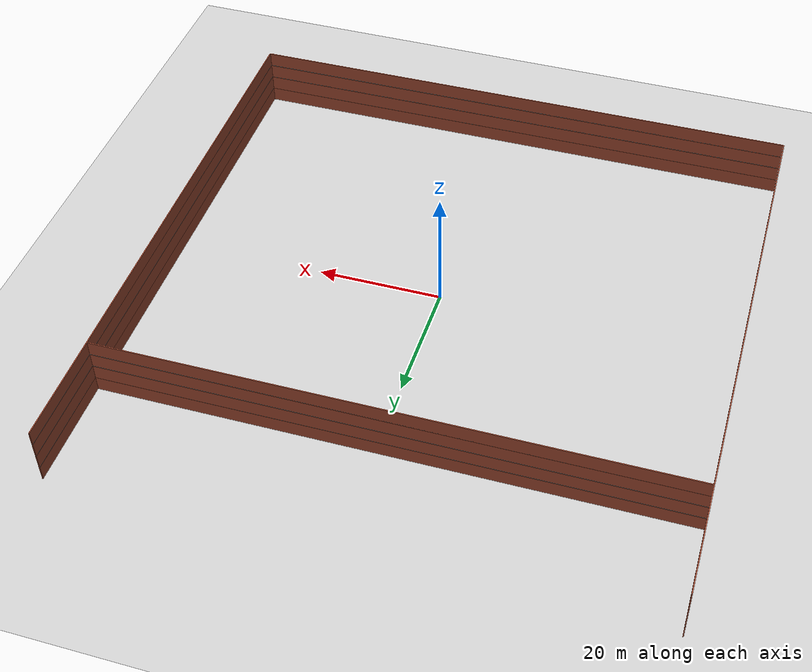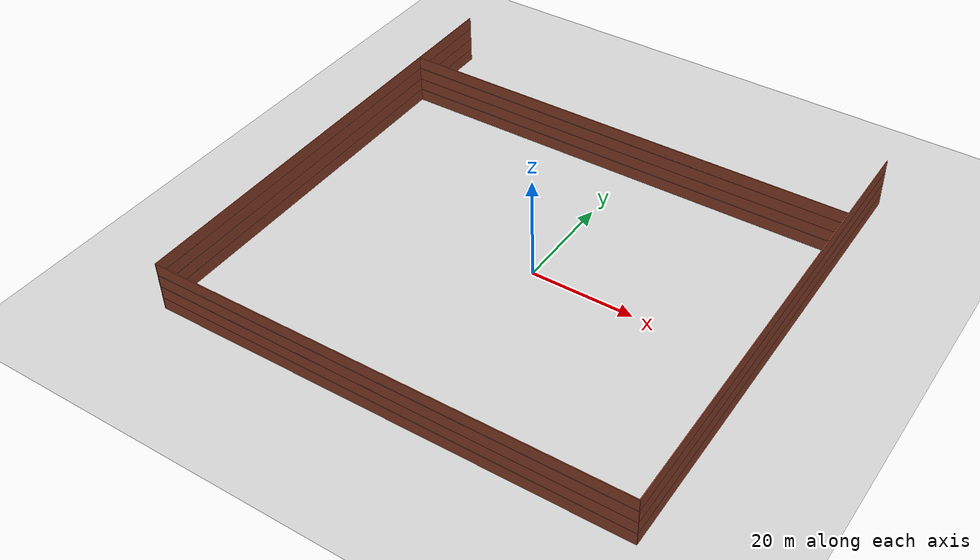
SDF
<sdf version="1.6">
 <world name="default">
  <light name="sun" type="directional">
   <pose>0 0 10 0 -0 0</pose>
   <diffuse>0.8 0.8 0.8 1</diffuse>
   <specular>0.1 0.1 0.1 1</specular>
   <attenuation>
    <range>1000</range>
    <constant>0.9</constant>
    <linear>0.01</linear>
    <quadratic>0.001</quadratic>
   </attenuation>
   <direction>-0.5 0.5 -1</direction>
  </light>
  <model name="ground_plane">
   <static>1</static>
   <link name="link">
    <collision name="collision">
     <geometry><plane><normal>0 0 1</normal><size>100 100</size></plane></geometry>
     <surface><friction><ode><mu>100</mu><mu2>50</mu2></ode></friction></surface>
    </collision>
    <visual name="visual">
     <cast_shadows>0</cast_shadows>
     <geometry><plane><normal>0 0 1</normal><size>100 100</size></plane></geometry>
     <material>
      <script><uri>file://media/materials/scripts/gazebo.material</uri><name>Gazebo/Grey</name></script>
     </material>
    </visual>
   </link>
  </model>
  <gravity>0 0 -9.8</gravity>
  <magnetic_field>6e-06 2.3e-05 -4.2e-05</magnetic_field>
  <atmosphere type="adiabatic"/>
  <physics name="default_physics" default="0" type="ode">
   <max_step_size>0.001</max_step_size>
   <real_time_factor>1</real_time_factor>
   <real_time_update_rate>1000</real_time_update_rate>
  </physics>
  <scene><ambient>0.4 0.4 0.4 1</ambient><background>0.7 0.7 0.7 1</background><shadows>1</shadows></scene>
  <spherical_coordinates>
   <surface_model>EARTH_WGS84</surface_model>
   <latitude_deg>0</latitude_deg>
   <longitude_deg>0</longitude_deg>
   <elevation>0</elevation>
   <heading_deg>0</heading_deg>
  </spherical_coordinates>
  <plugin name="ros_interface_plugin" filename="librotors_gazebo_ros_interface_plugin.so"/>
  <model name="longwall">
   <pose>-47.5422 4.38229 0 0 -0 1.57891</pose>
   <link name="Floor_0">
    <collision name="Floor_0_Collision">
     <geometry><box><size>91 0.15 0.1</size></box></geometry>
     <pose>0 0 0.05 0 -0 0</pose>
    </collision>
    <visual name="Floor_0_Visual">
     <pose>0 0 0.05 0 -0 0</pose>
     <geometry><box><size>91 0.15 0.1</size></box></geometry>
     <material>
      <script><uri>file://media/materials/scripts/gazebo.material</uri><name>Gazebo/Grey</name></script>
      <ambient>1 1 1 1</ambient>
     </material>
    </visual>
    <pose>2e-06 0 2.5 0 -0 0</pose>
   </link>
   <link name="Floor_1">
    <collision name="Floor_1_Collision">
     <geometry><box><size>91 0.15 0.1</size></box></geometry>
     <pose>0 0 0.05 0 -0 0</pose>
    </collision>
    <visual name="Floor_1_Visual">
     <pose>0 0 0.05 0 -0 0</pose>
     <geometry><box><size>91 0.15 0.1</size></box></geometry>
     <material>
      <script><uri>file://media/materials/scripts/gazebo.material</uri><name>Gazebo/Grey</name></script>
      <ambient>1 1 1 1</ambient>
     </material>
    </visual>
    <pose>2e-06 0 5 0 -0 0</pose>
   </link>
   <link name="Floor_2">
    <collision name="Floor_2_Collision">
     <geometry><box><size>91 0.15 0.1</size></box></geometry>
     <pose>0 0 0.05 0 -0 0</pose>
    </collision>
    <visual name="Floor_2_Visual">
     <pose>0 0 0.05 0 -0 0</pose>
     <geometry><box><size>91 0.15 0.1</size></box></geometry>
     <material>
      <script><uri>file://media/materials/scripts/gazebo.material</uri><name>Gazebo/Grey</name></script>
      <ambient>1 1 1 1</ambient>
     </material>
    </visual>
    <pose>2e-06 0 7.5 0 -0 0</pose>
   </link>
   <link name="Wall_4">
    <collision name="Wall_4_Collision">
     <geometry><box><size>91 0.15 2.5</size></box></geometry>
     <pose>0 0 1.25 0 -0 0</pose>
    </collision>
    <visual name="Wall_4_Visual">
     <pose>0 0 1.25 0 -0 0</pose>
     <geometry><box><size>91 0.15 2.5</size></box></geometry>
     <material>
      <script><uri>file://media/materials/scripts/gazebo.material</uri><name>Gazebo/Bricks</name></script>
      <ambient>1 1 1 1</ambient>
     </material>
    </visual>
    <pose>2e-06 0 0 0 -0 0</pose>
   </link>
   <link name="Wall_6">
    <collision name="Wall_6_Collision">
     <geometry><box><size>91 0.15 2.5</size></box></geometry>
     <pose>0 0 1.25 0 -0 0</pose>
    </collision>
    <visual name="Wall_6_Visual">
     <pose>0 0 1.25 0 -0 0</pose>
     <geometry><box><size>91 0.15 2.5</size></box></geometry>
     <material>
      <script><uri>file://media/materials/scripts/gazebo.material</uri><name>Gazebo/Bricks</name></script>
      <ambient>1 1 1 1</ambient>
     </material>
    </visual>
    <pose>2e-06 0 2.5 0 -0 0</pose>
   </link>
   <link name="Wall_7">
    <collision name="Wall_7_Collision">
     <geometry><box><size>91 0.15 2.5</size></box></geometry>
     <pose>0 0 1.25 0 -0 0</pose>
    </collision>
    <visual name="Wall_7_Visual">
     <pose>0 0 1.25 0 -0 0</pose>
     <geometry><box><size>91 0.15 2.5</size></box></geometry>
     <material>
      <script><uri>file://media/materials/scripts/gazebo.material</uri><name>Gazebo/Bricks</name></script>
      <ambient>1 1 1 1</ambient>
     </material>
    </visual>
    <pose>2e-06 0 5 0 -0 0</pose>
   </link>
   <link name="Wall_8">
    <collision name="Wall_8_Collision">
     <geometry><box><size>91 0.15 2.5</size></box></geometry>
     <pose>0 0 1.25 0 -0 0</pose>
    </collision>
    <visual name="Wall_8_Visual">
     <pose>0 0 1.25 0 -0 0</pose>
     <geometry><box><size>91 0.15 2.5</size></box></geometry>
     <material>
      <script><uri>file://media/materials/scripts/gazebo.material</uri><name>Gazebo/Bricks</name></script>
      <ambient>1 1 1 1</ambient>
     </material>
    </visual>
    <pose>2e-06 0 7.5 0 -0 0</pose>
   </link>
   <static>1</static>
  </model>
  <model name="longwall_clone">
   <pose>43.5098 5.19994 0 0 -0 1.57891</pose>
   <link name="Floor_0">
    <collision name="Floor_0_Collision">
     <geometry><box><size>91 0.15 0.1</size></box></geometry>
     <pose>0 0 0.05 0 -0 0</pose>
    </collision>
    <visual name="Floor_0_Visual">
     <pose>0 0 0.05 0 -0 0</pose>
     <geometry><box><size>91 0.15 0.1</size></box></geometry>
     <material>
      <script><uri>file://media/materials/scripts/gazebo.material</uri><name>Gazebo/Grey</name></script>
      <ambient>1 1 1 1</ambient>
     </material>
    </visual>
    <pose>2e-06 0 2.5 0 -0 0</pose>
   </link>
   <link name="Floor_1">
    <collision name="Floor_1_Collision">
     <geometry><box><size>91 0.15 0.1</size></box></geometry>
     <pose>0 0 0.05 0 -0 0</pose>
    </collision>
    <visual name="Floor_1_Visual">
     <pose>0 0 0.05 0 -0 0</pose>
     <geometry><box><size>91 0.15 0.1</size></box></geometry>
     <material>
      <script><uri>file://media/materials/scripts/gazebo.material</uri><name>Gazebo/Grey</name></script>
      <ambient>1 1 1 1</ambient>
     </material>
    </visual>
    <pose>2e-06 0 5 0 -0 0</pose>
   </link>
   <link name="Floor_2">
    <collision name="Floor_2_Collision">
     <geometry><box><size>91 0.15 0.1</size></box></geometry>
     <pose>0 0 0.05 0 -0 0</pose>
    </collision>
    <visual name="Floor_2_Visual">
     <pose>0 0 0.05 0 -0 0</pose>
     <geometry><box><size>91 0.15 0.1</size></box></geometry>
     <material>
      <script><uri>file://media/materials/scripts/gazebo.material</uri><name>Gazebo/Grey</name></script>
      <ambient>1 1 1 1</ambient>
     </material>
    </visual>
    <pose>2e-06 0 7.5 0 -0 0</pose>
   </link>
   <link name="Wall_4">
    <collision name="Wall_4_Collision">
     <geometry><box><size>91 0.15 2.5</size></box></geometry>
     <pose>0 0 1.25 0 -0 0</pose>
    </collision>
    <visual name="Wall_4_Visual">
     <pose>0 0 1.25 0 -0 0</pose>
     <geometry><box><size>91 0.15 2.5</size></box></geometry>
     <material>
      <script><uri>file://media/materials/scripts/gazebo.material</uri><name>Gazebo/Bricks</name></script>
      <ambient>1 1 1 1</ambient>
     </material>
    </visual>
    <pose>2e-06 0 0 0 -0 0</pose>
   </link>
   <link name="Wall_6">
    <collision name="Wall_6_Collision">
     <geometry><box><size>91 0.15 2.5</size></box></geometry>
     <pose>0 0 1.25 0 -0 0</pose>
    </collision>
    <visual name="Wall_6_Visual">
     <pose>0 0 1.25 0 -0 0</pose>
     <geometry><box><size>91 0.15 2.5</size></box></geometry>
     <material>
      <script><uri>file://media/materials/scripts/gazebo.material</uri><name>Gazebo/Bricks</name></script>
      <ambient>1 1 1 1</ambient>
     </material>
    </visual>
    <pose>2e-06 0 2.5 0 -0 0</pose>
   </link>
   <link name="Wall_7">
    <collision name="Wall_7_Collision">
     <geometry><box><size>91 0.15 2.5</size></box></geometry>
     <pose>0 0 1.25 0 -0 0</pose>
    </collision>
    <visual name="Wall_7_Visual">
     <pose>0 0 1.25 0 -0 0</pose>
     <geometry><box><size>91 0.15 2.5</size></box></geometry>
     <material>
      <script><uri>file://media/materials/scripts/gazebo.material</uri><name>Gazebo/Bricks</name></script>
      <ambient>1 1 1 1</ambient>
     </material>
    </visual>
    <pose>2e-06 0 5 0 -0 0</pose>
   </link>
   <link name="Wall_8">
    <collision name="Wall_8_Collision">
     <geometry><box><size>91 0.15 2.5</size></box></geometry>
     <pose>0 0 1.25 0 -0 0</pose>
    </collision>
    <visual name="Wall_8_Visual">
     <pose>0 0 1.25 0 -0 0</pose>
     <geometry><box><size>91 0.15 2.5</size></box></geometry>
     <material>
      <script><uri>file://media/materials/scripts/gazebo.material</uri><name>Gazebo/Bricks</name></script>
      <ambient>1 1 1 1</ambient>
     </material>
    </visual>
    <pose>2e-06 0 7.5 0 -0 0</pose>
   </link>
   <static>1</static>
  </model>
  <model name="longwall_clone_clone">
   <pose>-1.57833 -40.6937 0 0 -0 0.007705</pose>
   <link name="Floor_0">
    <collision name="Floor_0_Collision">
     <geometry><box><size>91 0.15 0.1</size></box></geometry>
     <pose>0 0 0.05 0 -0 0</pose>
    </collision>
    <visual name="Floor_0_Visual">
     <pose>0 0 0.05 0 -0 0</pose>
     <geometry><box><size>91 0.15 0.1</size></box></geometry>
     <material>
      <script><uri>file://media/materials/scripts/gazebo.material</uri><name>Gazebo/Grey</name></script>
      <ambient>1 1 1 1</ambient>
     </material>
    </visual>
    <pose>2e-06 0 2.5 0 -0 0</pose>
   </link>
   <link name="Floor_1">
    <collision name="Floor_1_Collision">
     <geometry><box><size>91 0.15 0.1</size></box></geometry>
     <pose>0 0 0.05 0 -0 0</pose>
    </collision>
    <visual name="Floor_1_Visual">
     <pose>0 0 0.05 0 -0 0</pose>
     <geometry><box><size>91 0.15 0.1</size></box></geometry>
     <material>
      <script><uri>file://media/materials/scripts/gazebo.material</uri><name>Gazebo/Grey</name></script>
      <ambient>1 1 1 1</ambient>
     </material>
    </visual>
    <pose>2e-06 0 5 0 -0 0</pose>
   </link>
   <link name="Floor_2">
    <collision name="Floor_2_Collision">
     <geometry><box><size>91 0.15 0.1</size></box></geometry>
     <pose>0 0 0.05 0 -0 0</pose>
    </collision>
    <visual name="Floor_2_Visual">
     <pose>0 0 0.05 0 -0 0</pose>
     <geometry><box><size>91 0.15 0.1</size></box></geometry>
     <material>
      <script><uri>file://media/materials/scripts/gazebo.material</uri><name>Gazebo/Grey</name></script>
      <ambient>1 1 1 1</ambient>
     </material>
    </visual>
    <pose>2e-06 0 7.5 0 -0 0</pose>
   </link>
   <link name="Wall_4">
    <collision name="Wall_4_Collision">
     <geometry><box><size>91 0.15 2.5</size></box></geometry>
     <pose>0 0 1.25 0 -0 0</pose>
    </collision>
    <visual name="Wall_4_Visual">
     <pose>0 0 1.25 0 -0 0</pose>
     <geometry><box><size>91 0.15 2.5</size></box></geometry>
     <material>
      <script><uri>file://media/materials/scripts/gazebo.material</uri><name>Gazebo/Bricks</name></script>
      <ambient>1 1 1 1</ambient>
     </material>
    </visual>
    <pose>2e-06 0 0 0 -0 0</pose>
   </link>
   <link name="Wall_6">
    <collision name="Wall_6_Collision">
     <geometry><box><size>91 0.15 2.5</size></box></geometry>
     <pose>0 0 1.25 0 -0 0</pose>
    </collision>
    <visual name="Wall_6_Visual">
     <pose>0 0 1.25 0 -0 0</pose>
     <geometry><box><size>91 0.15 2.5</size></box></geometry>
     <material>
      <script><uri>file://media/materials/scripts/gazebo.material</uri><name>Gazebo/Bricks</name></script>
      <ambient>1 1 1 1</ambient>
     </material>
    </visual>
    <pose>2e-06 0 2.5 0 -0 0</pose>
   </link>
   <link name="Wall_7">
    <collision name="Wall_7_Collision">
     <geometry><box><size>91 0.15 2.5</size></box></geometry>
     <pose>0 0 1.25 0 -0 0</pose>
    </collision>
    <visual name="Wall_7_Visual">
     <pose>0 0 1.25 0 -0 0</pose>
     <geometry><box><size>91 0.15 2.5</size></box></geometry>
     <material>
      <script><uri>file://media/materials/scripts/gazebo.material</uri><name>Gazebo/Bricks</name></script>
      <ambient>1 1 1 1</ambient>
     </material>
    </visual>
    <pose>2e-06 0 5 0 -0 0</pose>
   </link>
   <link name="Wall_8">
    <collision name="Wall_8_Collision">
     <geometry><box><size>91 0.15 2.5</size></box></geometry>
     <pose>0 0 1.25 0 -0 0</pose>
    </collision>
    <visual name="Wall_8_Visual">
     <pose>0 0 1.25 0 -0 0</pose>
     <geometry><box><size>91 0.15 2.5</size></box></geometry>
     <material>
      <script><uri>file://media/materials/scripts/gazebo.material</uri><name>Gazebo/Bricks</name></script>
      <ambient>1 1 1 1</ambient>
     </material>
    </visual>
    <pose>2e-06 0 7.5 0 -0 0</pose>
   </link>
   <static>1</static>
  </model>
  <model name="longwall_clone_clone_clone">
   <pose>-2.28432 32.6514 0 0 -0 0.007705</pose>
   <link name="Floor_0">
    <collision name="Floor_0_Collision">
     <geometry><box><size>91 0.15 0.1</size></box></geometry>
     <pose>0 0 0.05 0 -0 0</pose>
    </collision>
    <visual name="Floor_0_Visual">
     <pose>0 0 0.05 0 -0 0</pose>
     <geometry><box><size>91 0.15 0.1</size></box></geometry>
     <material>
      <script><uri>file://media/materials/scripts/gazebo.material</uri><name>Gazebo/Grey</name></script>
      <ambient>1 1 1 1</ambient>
     </material>
    </visual>
    <pose>2e-06 0 2.5 0 -0 0</pose>
   </link>
   <link name="Floor_1">
    <collision name="Floor_1_Collision">
     <geometry><box><size>91 0.15 0.1</size></box></geometry>
     <pose>0 0 0.05 0 -0 0</pose>
    </collision>
    <visual name="Floor_1_Visual">
     <pose>0 0 0.05 0 -0 0</pose>
     <geometry><box><size>91 0.15 0.1</size></box></geometry>
     <material>
      <script><uri>file://media/materials/scripts/gazebo.material</uri><name>Gazebo/Grey</name></script>
      <ambient>1 1 1 1</ambient>
     </material>
    </visual>
    <pose>2e-06 0 5 0 -0 0</pose>
   </link>
   <link name="Floor_2">
    <collision name="Floor_2_Collision">
     <geometry><box><size>91 0.15 0.1</size></box></geometry>
     <pose>0 0 0.05 0 -0 0</pose>
    </collision>
    <visual name="Floor_2_Visual">
     <pose>0 0 0.05 0 -0 0</pose>
     <geometry><box><size>91 0.15 0.1</size></box></geometry>
     <material>
      <script><uri>file://media/materials/scripts/gazebo.material</uri><name>Gazebo/Grey</name></script>
      <ambient>1 1 1 1</ambient>
     </material>
    </visual>
    <pose>2e-06 0 7.5 0 -0 0</pose>
   </link>
   <link name="Wall_4">
    <collision name="Wall_4_Collision">
     <geometry><box><size>91 0.15 2.5</size></box></geometry>
     <pose>0 0 1.25 0 -0 0</pose>
    </collision>
    <visual name="Wall_4_Visual">
     <pose>0 0 1.25 0 -0 0</pose>
     <geometry><box><size>91 0.15 2.5</size></box></geometry>
     <material>
      <script><uri>file://media/materials/scripts/gazebo.material</uri><name>Gazebo/Bricks</name></script>
      <ambient>1 1 1 1</ambient>
     </material>
    </visual>
    <pose>2e-06 0 0 0 -0 0</pose>
   </link>
   <link name="Wall_6">
    <collision name="Wall_6_Collision">
     <geometry><box><size>91 0.15 2.5</size></box></geometry>
     <pose>0 0 1.25 0 -0 0</pose>
    </collision>
    <visual name="Wall_6_Visual">
     <pose>0 0 1.25 0 -0 0</pose>
     <geometry><box><size>91 0.15 2.5</size></box></geometry>
     <material>
      <script><uri>file://media/materials/scripts/gazebo.material</uri><name>Gazebo/Bricks</name></script>
      <ambient>1 1 1 1</ambient>
     </material>
    </visual>
    <pose>2e-06 0 2.5 0 -0 0</pose>
   </link>
   <link name="Wall_7">
    <collision name="Wall_7_Collision">
     <geometry><box><size>91 0.15 2.5</size></box></geometry>
     <pose>0 0 1.25 0 -0 0</pose>
    </collision>
    <visual name="Wall_7_Visual">
     <pose>0 0 1.25 0 -0 0</pose>
     <geometry><box><size>91 0.15 2.5</size></box></geometry>
     <material>
      <script><uri>file://media/materials/scripts/gazebo.material</uri><name>Gazebo/Bricks</name></script>
      <ambient>1 1 1 1</ambient>
     </material>
    </visual>
    <pose>2e-06 0 5 0 -0 0</pose>
   </link>
   <link name="Wall_8">
    <collision name="Wall_8_Collision">
     <geometry><box><size>91 0.15 2.5</size></box></geometry>
     <pose>0 0 1.25 0 -0 0</pose>
    </collision>
    <visual name="Wall_8_Visual">
     <pose>0 0 1.25 0 -0 0</pose>
     <geometry><box><size>91 0.15 2.5</size></box></geometry>
     <material>
      <script><uri>file://media/materials/scripts/gazebo.material</uri><name>Gazebo/Bricks</name></script>
      <ambient>1 1 1 1</ambient>
     </material>
    </visual>
    <pose>2e-06 0 7.5 0 -0 0</pose>
   </link>
   <static>1</static>
  </model>
 </world>
</sdf>
